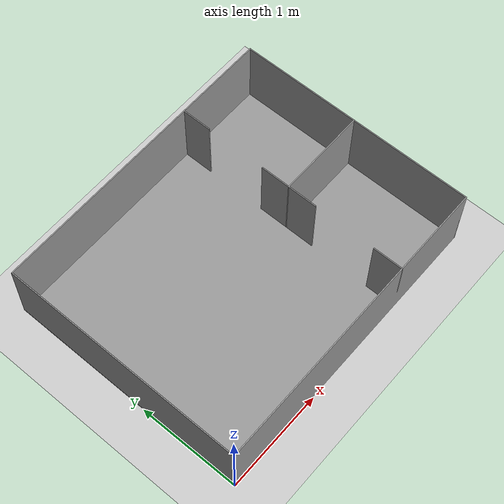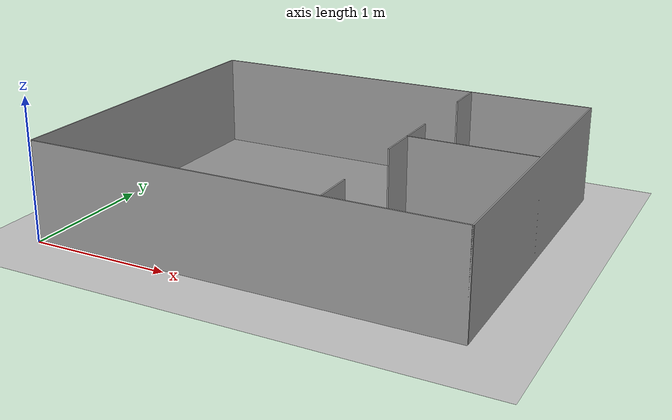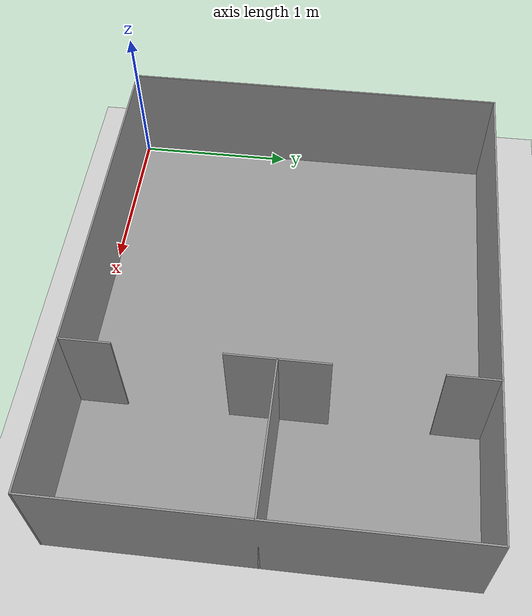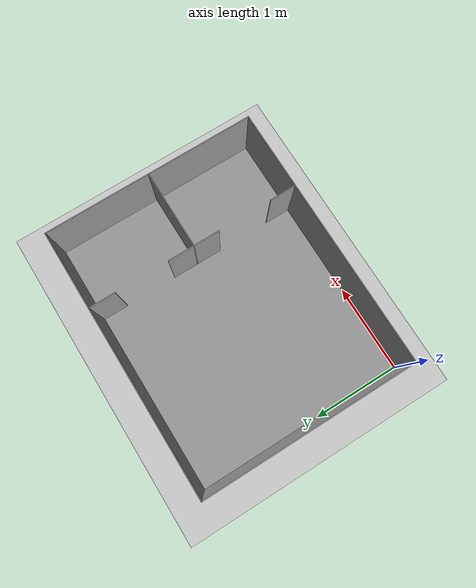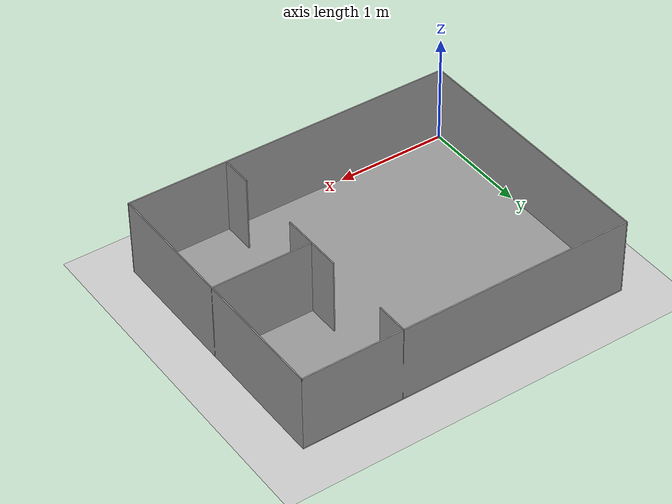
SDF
<sdf version='1.6'>
  <world name='default'>
    <include>
      <uri>model://ground_plane</uri>
    </include>
    <include>
      <uri>model://sun</uri>
    </include>

    <include>
      <uri>model://robot_tank_floor</uri>
      <name>robot_tank_floor</name>
      <pose>2.495400 1.483822 0.010000 0.00 0.00 0.00</pose>
    </include>
    <include>
      <uri>model://robot_tank_walls</uri>
      <name>robot_tank_walls</name>
      <pose>1.500525 1.203413 0.010000 0.0 0.0 0.0</pose>
    </include>

  </world>
</sdf>

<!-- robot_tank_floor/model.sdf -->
<sdf version='1.7'>
  <model name='fish_tank_floor'>
    <pose>0 0 0 0 0 0</pose>
    <link name='Wall_0'>
      <collision name='Wall_0_Collision'>
        <geometry>
          <box>
            <size>3 2.4 0.01</size>
          </box>
        </geometry>
        <pose>0 0 0.005 0 -0 0</pose>
      </collision>
      <visual name='Wall_0_Visual'>
        <pose>0 0 0.005 0 -0 0</pose>
        <geometry>
          <box>
            <size>3 2.4 0.01</size>
          </box>
        </geometry>
        <material>
          <script>
            <uri>file://media/materials/scripts/gazebo.material</uri>
            <name>Gazebo/Grey</name>
          </script>
          <ambient>1 1 1 1</ambient>
        </material>
        <meta>
          <layer>0</layer>
        </meta>
      </visual>
      <pose>-0.995 -0.28 0 0 -0 0</pose>
    </link>
    <static>1</static>
  </model>
</sdf>

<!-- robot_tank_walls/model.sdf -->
<sdf version='1.7'>
  <model name='robot_tank_walls'>
    <pose>1.495 1.195 0 0 -0 0</pose>
    <link name='Wall_39'>
      <collision name='Wall_39_Collision'>
        <geometry>
          <box>
            <size>3 0.01 0.7</size>
          </box>
        </geometry>
        <pose>0 0 0.35 0 -0 0</pose>
      </collision>
      <visual name='Wall_39_Visual'>
        <pose>0 0 0.35 0 -0 0</pose>
        <geometry>
          <box>
            <size>3 0.01 0.7</size>
          </box>
        </geometry>
        <material>
          <script>
            <uri>file://media/materials/scripts/gazebo.material</uri>
            <name>Gazebo/Grey</name>
          </script>
          <ambient>1 1 1 1</ambient>
        </material>
        <meta>
          <layer>0</layer>
        </meta>
      </visual>
      <pose>0 -1.195 0 0 -0 0</pose>
    </link>
    <link name='Wall_41'>
      <collision name='Wall_41_Collision'>
        <geometry>
          <box>
            <size>2.4 0.01 0.7</size>
          </box>
        </geometry>
        <pose>0 0 0.35 0 -0 0</pose>
      </collision>
      <visual name='Wall_41_Visual'>
        <pose>0 0 0.35 0 -0 0</pose>
        <geometry>
          <box>
            <size>2.4 0.01 0.7</size>
          </box>
        </geometry>
        <material>
          <script>
            <uri>file://media/materials/scripts/gazebo.material</uri>
            <name>Gazebo/Grey</name>
          </script>
          <ambient>1 1 1 1</ambient>
        </material>
        <meta>
          <layer>0</layer>
        </meta>
      </visual>
      <pose>-1.495 0 0 0 -0 1.5708</pose>
    </link>
    <link name='Wall_50'>
      <collision name='Wall_50_Collision'>
        <geometry>
          <box>
            <size>3 0.01 0.7</size>
          </box>
        </geometry>
        <pose>0 0 0.35 0 -0 0</pose>
      </collision>
      <visual name='Wall_50_Visual'>
        <pose>0 0 0.35 0 -0 0</pose>
        <geometry>
          <box>
            <size>3 0.01 0.7</size>
          </box>
        </geometry>
        <material>
          <script>
            <uri>file://media/materials/scripts/gazebo.material</uri>
            <name>Gazebo/Grey</name>
          </script>
          <ambient>1 1 1 1</ambient>
        </material>
        <meta>
          <layer>0</layer>
        </meta>
      </visual>
      <pose>0 1.195 0 0 -0 0</pose>
    </link>
    <link name='Wall_52'>
      <collision name='Wall_52_Collision'>
        <geometry>
          <box>
            <size>2.4 0.01 0.7</size>
          </box>
        </geometry>
        <pose>0 0 0.35 0 -0 0</pose>
      </collision>
      <visual name='Wall_52_Visual'>
        <pose>0 0 0.35 0 -0 0</pose>
        <geometry>
          <box>
            <size>2.4 0.01 0.7</size>
          </box>
        </geometry>
        <material>
          <script>
            <uri>file://media/materials/scripts/gazebo.material</uri>
            <name>Gazebo/Grey</name>
          </script>
          <ambient>1 1 1 1</ambient>
        </material>
        <meta>
          <layer>0</layer>
        </meta>
      </visual>
      <pose>1.495 0 0 0 -0 -1.5708</pose>
    </link>
    <link name='Wall_54'>
      <collision name='Wall_54_Collision'>
        <geometry>
          <box>
            <size>0.3 0.01 0.7</size>
          </box>
        </geometry>
        <pose>0 0 0.35 0 -0 0</pose>
      </collision>
      <visual name='Wall_54_Visual'>
        <pose>0 0 0.35 0 -0 0</pose>
        <geometry>
          <box>
            <size>0.3 0.01 0.7</size>
          </box>
        </geometry>
        <material>
          <script>
            <uri>file://media/materials/scripts/gazebo.material</uri>
            <name>Gazebo/Grey</name>
          </script>
          <ambient>1 1 1 1</ambient>
        </material>
        <meta>
          <layer>0</layer>
        </meta>
      </visual>
      <pose>0.605 1.05 0 0 -0 -1.5708</pose>
    </link>
    <link name='Wall_56'>
      <collision name='Wall_56_Collision'>
        <geometry>
          <box>
            <size>0.3 0.01 0.7</size>
          </box>
        </geometry>
        <pose>0 0 0.35 0 -0 0</pose>
      </collision>
      <visual name='Wall_56_Visual'>
        <pose>0 0 0.35 0 -0 0</pose>
        <geometry>
          <box>
            <size>0.3 0.01 0.7</size>
          </box>
        </geometry>
        <material>
          <script>
            <uri>file://media/materials/scripts/gazebo.material</uri>
            <name>Gazebo/Grey</name>
          </script>
          <ambient>1 1 1 1</ambient>
        </material>
        <meta>
          <layer>0</layer>
        </meta>
      </visual>
      <pose>0.605 -1.05 0 0 -0 1.5708</pose>
    </link>
    <link name='Wall_58'>
      <collision name='Wall_58_Collision'>
        <geometry>
          <box>
            <size>0.9 0.01 0.7</size>
          </box>
        </geometry>
        <pose>0 0 0.35 0 -0 0</pose>
      </collision>
      <visual name='Wall_58_Visual'>
        <pose>0 0 0.35 0 -0 0</pose>
        <geometry>
          <box>
            <size>0.9 0.01 0.7</size>
          </box>
        </geometry>
        <material>
          <script>
            <uri>file://media/materials/scripts/gazebo.material</uri>
            <name>Gazebo/Grey</name>
          </script>
          <ambient>1 1 1 1</ambient>
        </material>
        <meta>
          <layer>0</layer>
        </meta>
      </visual>
      <pose>1.05 0.005 0 0 -0 3.14159</pose>
    </link>
    <link name='Wall_60'>
      <collision name='Wall_60_Collision'>
        <geometry>
          <box>
            <size>0.3 0.01 0.7</size>
          </box>
        </geometry>
        <pose>0 0 0.35 0 -0 0</pose>
      </collision>
      <visual name='Wall_60_Visual'>
        <pose>0 0 0.35 0 -0 0</pose>
        <geometry>
          <box>
            <size>0.3 0.01 0.7</size>
          </box>
        </geometry>
        <material>
          <script>
            <uri>file://media/materials/scripts/gazebo.material</uri>
            <name>Gazebo/Grey</name>
          </script>
          <ambient>1 1 1 1</ambient>
        </material>
        <meta>
          <layer>0</layer>
        </meta>
      </visual>
      <pose>0.605 -0.14 0 0 -0 -1.5708</pose>
    </link>
    <link name='Wall_62'>
      <collision name='Wall_62_Collision'>
        <geometry>
          <box>
            <size>0.3 0.01 0.7</size>
          </box>
        </geometry>
        <pose>0 0 0.35 0 -0 0</pose>
      </collision>
      <visual name='Wall_62_Visual'>
        <pose>0 0 0.35 0 -0 0</pose>
        <geometry>
          <box>
            <size>0.3 0.01 0.7</size>
          </box>
        </geometry>
        <material>
          <script>
            <uri>file://media/materials/scripts/gazebo.material</uri>
            <name>Gazebo/Grey</name>
          </script>
          <ambient>1 1 1 1</ambient>
        </material>
        <meta>
          <layer>0</layer>
        </meta>
      </visual>
      <pose>0.605 0.15 0 0 -0 1.5708</pose>
    </link>
    <static>1</static>
  </model>
</sdf>
